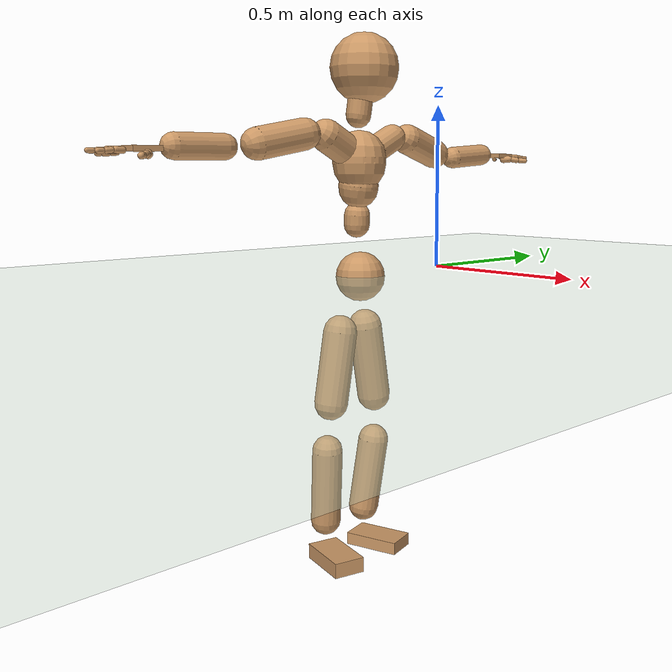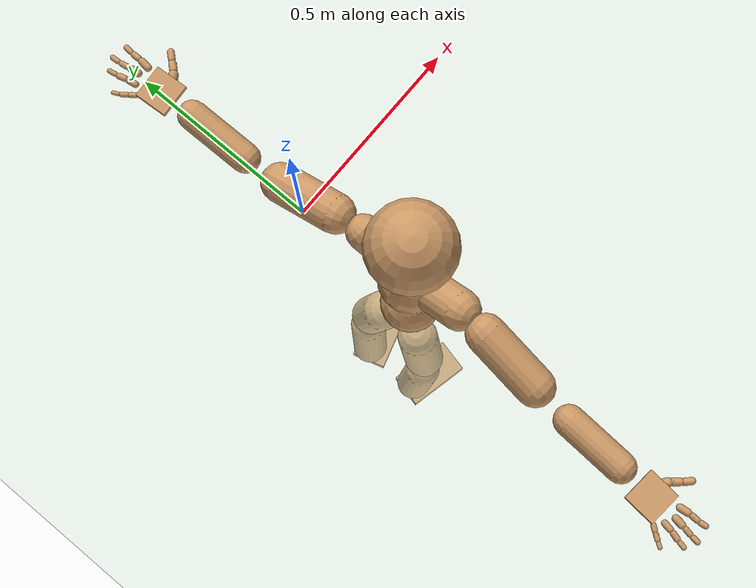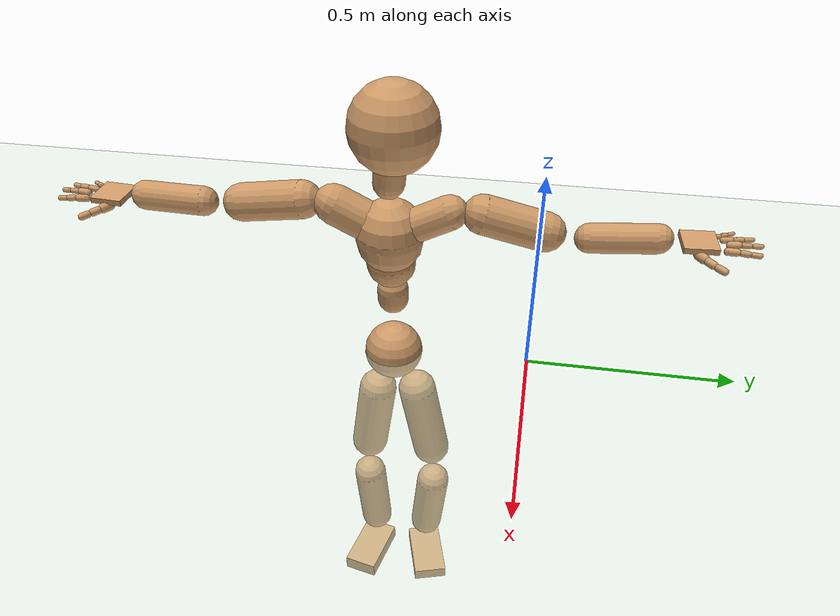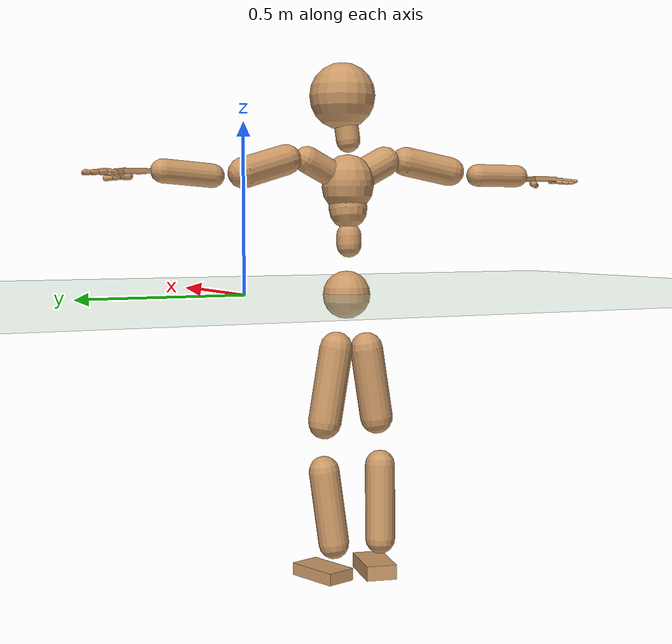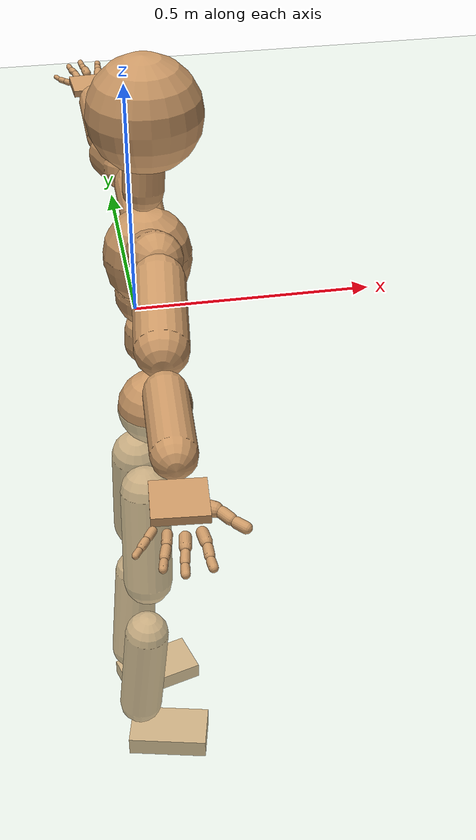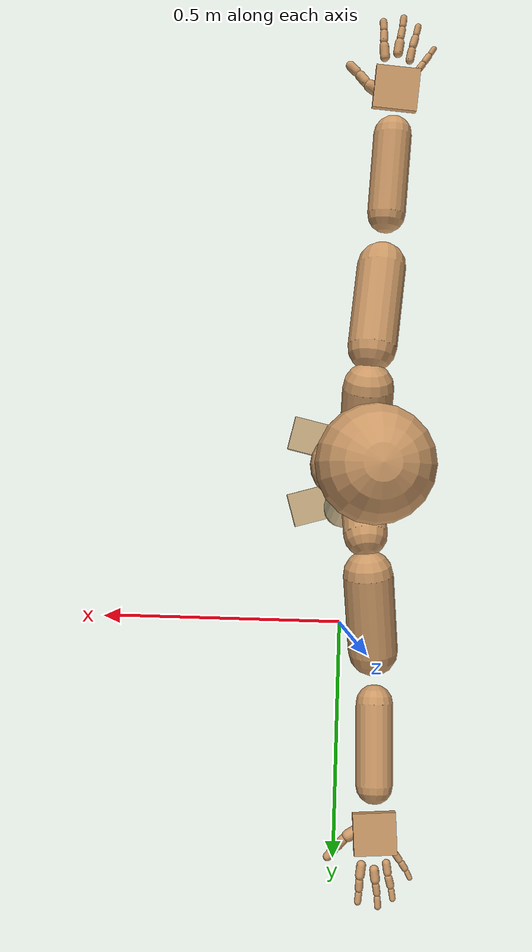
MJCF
<mujoco model="humanoid">
  <compiler coordinate="local" angle="radian"/>
  <default>
    <joint damping="0.0" armature="0.01" stiffness="0.0" limited="true"/>
    <geom conaffinity="1" condim="3" contype="7" margin="0.001" rgba="0.8 0.6 .4 1"/>
  </default>
  <asset>
    <texture type="skybox" builtin="gradient" rgb1=".4 .5 .6" rgb2="0 0 0" width="100" height="100"/>
    <texture builtin="flat" height="1278" mark="cross" markrgb="1 1 1" name="texgeom" random="0.01" rgb1="0.8 0.6 0.4" rgb2="0.8 0.6 0.4" type="cube" width="127"/>
    <texture builtin="checker" height="100" name="texplane" rgb1="0 0 0" rgb2="0.8 0.8 0.8" type="2d" width="100"/>
    <material name="MatPlane" reflectance="0.5" shininess="1" specular="1" texrepeat="60 60" texture="texplane"/>
    <material name="geom" texture="texgeom" texuniform="true"/>
  </asset>
  <worldbody>
    <light cutoff="100" diffuse="1 1 1" dir="-0 0 -1.3" directional="true" exponent="1" pos="0 0 1.3" specular=".1 .1 .1"/>
    <geom conaffinity="1" condim="3" name="floor" pos="0 0 0" rgba="0.8 0.9 0.8 1" size="100 100 .2" type="plane" material="MatPlane"/>
    <body name="Pelvis" pos="-0.0002 -0.3334 -0.0054">
      <freejoint name="Pelvis"/>
      <geom type="sphere" contype="1" conaffinity="1" density="500" size="0.0723" pos="0.0000 0.0000 0.0000" name="Pelvis"/>
      <body name="L_Hip" pos="-0.0358 0.0403 -0.0834">
        <joint name="L_Hip_x" type="hinge" pos="0 0 0" axis="1 0 0" stiffness="800" damping="80" armature="0.02" range="-180.0000 180.0000"/>
        <joint name="L_Hip_y" type="hinge" pos="0 0 0" axis="0 1 0" stiffness="800" damping="80" armature="0.02" range="-180.0000 180.0000"/>
        <joint name="L_Hip_z" type="hinge" pos="0 0 0" axis="0 0 1" stiffness="800" damping="80" armature="0.02" range="-180.0000 180.0000"/>
        <geom type="capsule" contype="1" conaffinity="1" density="500" fromto="-0.0010 0.0133 -0.0737 -0.0042 0.0531 -0.2947" size="0.0496" name="L_Hip"/>
        <body name="L_Knee" pos="-0.0052 0.0664 -0.3684">
          <joint name="L_Knee_x" type="hinge" pos="0 0 0" axis="1 0 0" stiffness="800" damping="80" armature="0.02" range="-180.0000 180.0000"/>
          <joint name="L_Knee_y" type="hinge" pos="0 0 0" axis="0 1 0" stiffness="800" damping="80" armature="0.02" range="-180.0000 180.0000"/>
          <joint name="L_Knee_z" type="hinge" pos="0 0 0" axis="0 0 1" stiffness="800" damping="80" armature="0.02" range="-180.0000 180.0000"/>
          <geom type="capsule" contype="1" conaffinity="1" density="500" fromto="-0.0069 -0.0074 -0.0723 -0.0277 -0.0297 -0.2891" size="0.0459" name="L_Knee"/>
          <body name="L_Ankle" pos="-0.0346 -0.0372 -0.3613">
            <joint name="L_Ankle_x" type="hinge" pos="0 0 0" axis="1 0 0" stiffness="800" damping="80" armature="0.02" range="-180.0000 180.0000"/>
            <joint name="L_Ankle_y" type="hinge" pos="0 0 0" axis="0 1 0" stiffness="800" damping="80" armature="0.02" range="-180.0000 180.0000"/>
            <joint name="L_Ankle_z" type="hinge" pos="0 0 0" axis="0 0 1" stiffness="800" damping="80" armature="0.02" range="-180.0000 180.0000"/>
            <geom type="box" contype="1" conaffinity="1" density="500" pos="0.0619 0.0180 -0.0259" size="0.0844 0.047 0.0183" quat="0.9900 0.0000 0.0000 0.1413" name="L_Ankle"/>
            <body name="L_Toe" pos="0.1238 0.0361 -0.0518">
              <joint name="L_Toe_x" type="hinge" pos="0 0 0" axis="1 0 0" stiffness="500" damping="50" armature="0.02" range="-180.0000 180.0000"/>
              <joint name="L_Toe_y" type="hinge" pos="0 0 0" axis="0 1 0" stiffness="500" damping="50" armature="0.02" range="-180.0000 180.0000"/>
              <joint name="L_Toe_z" type="hinge" pos="0 0 0" axis="0 0 1" stiffness="500" damping="50" armature="0.02" range="-180.0000 180.0000"/>
              <geom type="box" contype="1" conaffinity="1" density="500" pos="0.0000 0.0000 0.0275" size="0.001 0.0023 0.001" quat="0.9892 0.0000 0.0000 0.1464" name="L_Toe"/>
            </body>
          </body>
        </body>
      </body>
      <body name="R_Hip" pos="-0.0294 -0.0413 -0.0924">
        <joint name="R_Hip_x" type="hinge" pos="0 0 0" axis="1 0 0" stiffness="800" damping="80" armature="0.02" range="-180.0000 180.0000"/>
        <joint name="R_Hip_y" type="hinge" pos="0 0 0" axis="0 1 0" stiffness="800" damping="80" armature="0.02" range="-180.0000 180.0000"/>
        <joint name="R_Hip_z" type="hinge" pos="0 0 0" axis="0 0 1" stiffness="800" damping="80" armature="0.02" range="-180.0000 180.0000"/>
        <geom type="capsule" contype="1" conaffinity="1" density="500" fromto="-0.0023 -0.0105 -0.0707 -0.0091 -0.0420 -0.2827" size="0.0494" name="R_Hip"/>
        <body name="R_Knee" pos="-0.0114 -0.0525 -0.3534">
          <joint name="R_Knee_x" type="hinge" pos="0 0 0" axis="1 0 0" stiffness="800" damping="80" armature="0.02" range="-180.0000 180.0000"/>
          <joint name="R_Knee_y" type="hinge" pos="0 0 0" axis="0 1 0" stiffness="800" damping="80" armature="0.02" range="-180.0000 180.0000"/>
          <joint name="R_Knee_z" type="hinge" pos="0 0 0" axis="0 0 1" stiffness="800" damping="80" armature="0.02" range="-180.0000 180.0000"/>
          <geom type="capsule" contype="1" conaffinity="1" density="500" fromto="-0.0069 0.0031 -0.0747 -0.0276 0.0125 -0.2988" size="0.0453" name="R_Knee"/>
          <body name="R_Ankle" pos="-0.0345 0.0157 -0.3734">
            <joint name="R_Ankle_x" type="hinge" pos="0 0 0" axis="1 0 0" stiffness="800" damping="80" armature="0.02" range="-180.0000 180.0000"/>
            <joint name="R_Ankle_y" type="hinge" pos="0 0 0" axis="0 1 0" stiffness="800" damping="80" armature="0.02" range="-180.0000 180.0000"/>
            <joint name="R_Ankle_z" type="hinge" pos="0 0 0" axis="0 0 1" stiffness="800" damping="80" armature="0.02" range="-180.0000 180.0000"/>
            <geom type="box" contype="1" conaffinity="1" density="500" pos="0.0647 -0.0146 -0.0261" size="0.0844 0.0471 0.0223" quat="0.9938 0.0000 0.0000 -0.1110" name="R_Ankle"/>
            <body name="R_Toe" pos="0.1295 -0.0293 -0.0522">
              <joint name="R_Toe_x" type="hinge" pos="0 0 0" axis="1 0 0" stiffness="500" damping="50" armature="0.02" range="-180.0000 180.0000"/>
              <joint name="R_Toe_y" type="hinge" pos="0 0 0" axis="0 1 0" stiffness="500" damping="50" armature="0.02" range="-180.0000 180.0000"/>
              <joint name="R_Toe_z" type="hinge" pos="0 0 0" axis="0 0 1" stiffness="500" damping="50" armature="0.02" range="-180.0000 180.0000"/>
              <geom type="box" contype="1" conaffinity="1" density="500" pos="0.0000 0.0000 0.0237" size="0.0009 0.0023 0.001" quat="0.9948 0.0000 0.0000 -0.1021" name="R_Toe"/>
            </body>
          </body>
        </body>
      </body>
      <body name="Torso" pos="-0.0177 -0.0009 0.0939">
        <joint name="Torso_x" type="hinge" pos="0 0 0" axis="1 0 0" stiffness="1000" damping="100" armature="0.02" range="-180.0000 180.0000"/>
        <joint name="Torso_y" type="hinge" pos="0 0 0" axis="0 1 0" stiffness="1000" damping="100" armature="0.02" range="-180.0000 180.0000"/>
        <joint name="Torso_z" type="hinge" pos="0 0 0" axis="0 0 1" stiffness="1000" damping="100" armature="0.02" range="-180.0000 180.0000"/>
        <geom type="capsule" contype="1" conaffinity="1" density="500" fromto="0.0052 -0.0001 0.0846 0.0035 -0.0001 0.0564" size="0.0375" name="Torso"/>
        <body name="Spine" pos="0.0086 -0.0002 0.1409">
          <joint name="Spine_x" type="hinge" pos="0 0 0" axis="1 0 0" stiffness="1000" damping="100" armature="0.02" range="-180.0000 180.0000"/>
          <joint name="Spine_y" type="hinge" pos="0 0 0" axis="0 1 0" stiffness="1000" damping="100" armature="0.02" range="-180.0000 180.0000"/>
          <joint name="Spine_z" type="hinge" pos="0 0 0" axis="0 0 1" stiffness="1000" damping="100" armature="0.02" range="-180.0000 180.0000"/>
          <geom type="capsule" contype="1" conaffinity="1" density="500" fromto="0.0047 -0.0010 0.0318 0.0031 -0.0007 0.0212" size="0.0578" name="Spine"/>
          <body name="Chest" pos="0.0078 -0.0016 0.0529">
            <joint name="Chest_x" type="hinge" pos="0 0 0" axis="1 0 0" stiffness="1000" damping="100" armature="0.02" range="-180.0000 180.0000"/>
            <joint name="Chest_y" type="hinge" pos="0 0 0" axis="0 1 0" stiffness="1000" damping="100" armature="0.02" range="-180.0000 180.0000"/>
            <joint name="Chest_z" type="hinge" pos="0 0 0" axis="0 0 1" stiffness="1000" damping="100" armature="0.02" range="-180.0000 180.0000"/>
            <geom type="capsule" contype="1" conaffinity="1" density="500" fromto="-0.0005 0.0003 0.0552 -0.0003 0.0002 0.0368" size="0.0781" name="Chest"/>
            <body name="Neck" pos="-0.0055 -0.0037 0.1418">
              <joint name="Neck_x" type="hinge" pos="0 0 0" axis="1 0 0" stiffness="500" damping="50" armature="0.02" range="-180.0000 180.0000"/>
              <joint name="Neck_y" type="hinge" pos="0 0 0" axis="0 1 0" stiffness="500" damping="50" armature="0.02" range="-180.0000 180.0000"/>
              <joint name="Neck_z" type="hinge" pos="0 0 0" axis="0 0 1" stiffness="500" damping="50" armature="0.02" range="-180.0000 180.0000"/>
              <geom type="capsule" contype="1" conaffinity="1" density="500" fromto="0.0024 0.0037 0.0328 0.0095 0.0148 0.1311" size="0.0363" name="Neck"/>
              <body name="Head" pos="0.0119 0.0185 0.1639">
                <joint name="Head_x" type="hinge" pos="0 0 0" axis="1 0 0" stiffness="500" damping="50" armature="0.02" range="-180.0000 180.0000"/>
                <joint name="Head_y" type="hinge" pos="0 0 0" axis="0 1 0" stiffness="500" damping="50" armature="0.02" range="-180.0000 180.0000"/>
                <joint name="Head_z" type="hinge" pos="0 0 0" axis="0 0 1" stiffness="500" damping="50" armature="0.02" range="-180.0000 180.0000"/>
                <geom type="sphere" contype="1" conaffinity="1" density="500" size="0.0992" pos="0.0000 0.0000 0.0000" name="Head"/>
              </body>
            </body>
            <body name="L_Thorax" pos="0.0035 0.0382 0.0674">
              <joint name="L_Thorax_x" type="hinge" pos="0 0 0" axis="1 0 0" stiffness="500" damping="50" armature="0.02" range="-180.0000 180.0000"/>
              <joint name="L_Thorax_y" type="hinge" pos="0 0 0" axis="0 1 0" stiffness="500" damping="50" armature="0.02" range="-180.0000 180.0000"/>
              <joint name="L_Thorax_z" type="hinge" pos="0 0 0" axis="0 0 1" stiffness="500" damping="50" armature="0.02" range="-180.0000 180.0000"/>
              <geom type="capsule" contype="1" conaffinity="1" density="500" fromto="-0.0014 0.0244 0.0117 -0.0056 0.0974 0.0469" size="0.0396" name="L_Thorax"/>
              <body name="L_Shoulder" pos="-0.0071 0.1218 0.0586">
                <joint name="L_Shoulder_x" type="hinge" pos="0 0 0" axis="1 0 0" stiffness="500" damping="50" armature="0.02" range="-180.0000 180.0000"/>
                <joint name="L_Shoulder_y" type="hinge" pos="0 0 0" axis="0 1 0" stiffness="500" damping="50" armature="0.02" range="-180.0000 180.0000"/>
                <joint name="L_Shoulder_z" type="hinge" pos="0 0 0" axis="0 0 1" stiffness="500" damping="50" armature="0.02" range="-180.0000 180.0000"/>
                <geom type="capsule" contype="1" conaffinity="1" density="500" fromto="-0.0058 0.0471 -0.0138 -0.0232 0.1883 -0.0554" size="0.0448" name="L_Shoulder"/>
                <body name="L_Elbow" pos="-0.029 0.2354 -0.0692">
                  <joint name="L_Elbow_x" type="hinge" pos="0 0 0" axis="1 0 0" stiffness="500" damping="50" armature="0.02" range="-720.0000 720.0000"/>
                  <joint name="L_Elbow_y" type="hinge" pos="0 0 0" axis="0 1 0" stiffness="500" damping="50" armature="0.02" range="-720.0000 720.0000"/>
                  <joint name="L_Elbow_z" type="hinge" pos="0 0 0" axis="0 0 1" stiffness="500" damping="50" armature="0.02" range="-720.0000 720.0000"/>
                  <geom type="capsule" contype="1" conaffinity="1" density="500" fromto="-0.0010 0.0492 0.0036 -0.0038 0.1967 0.0142" size="0.0339" name="L_Elbow"/>
                  <body name="L_Wrist" pos="-0.0048 0.2459 0.0178">
                    <joint name="L_Wrist_x" type="hinge" pos="0 0 0" axis="1 0 0" stiffness="300" damping="30" armature="0.02" range="-180.0000 180.0000"/>
                    <joint name="L_Wrist_y" type="hinge" pos="0 0 0" axis="0 1 0" stiffness="300" damping="30" armature="0.02" range="-180.0000 180.0000"/>
                    <joint name="L_Wrist_z" type="hinge" pos="0 0 0" axis="0 0 1" stiffness="300" damping="30" armature="0.02" range="-180.0000 180.0000"/>
                    <geom type="box" contype="1" conaffinity="1" density="500" pos="-0.0027 0.0391 -0.0062" size="0.0387 0.0391 0.0067" quat="0.7309 0.0000 0.0000 -0.6824" name="L_Wrist"/>
                    <body name="L_Index1" pos="0.0187 0.0921 -0.0102">
                      <joint name="L_Index1_x" type="hinge" pos="0 0 0" axis="1 0 0" stiffness="100" damping="10" armature="0.02" range="-180.0000 180.0000"/>
                      <joint name="L_Index1_y" type="hinge" pos="0 0 0" axis="0 1 0" stiffness="100" damping="10" armature="0.02" range="-180.0000 180.0000"/>
                      <joint name="L_Index1_z" type="hinge" pos="0 0 0" axis="0 0 1" stiffness="100" damping="10" armature="0.02" range="-180.0000 180.0000"/>
                      <geom type="capsule" contype="1" conaffinity="1" density="500" fromto="0.0007 0.0063 0.0002 0.0028 0.0253 0.0009" size="0.0086" name="L_Index1"/>
                      <body name="L_Index2" pos="0.0035 0.0316 0.0011">
                        <joint name="L_Index2_x" type="hinge" pos="0 0 0" axis="1 0 0" stiffness="100" damping="10" armature="0.02" range="-180.0000 180.0000"/>
                        <joint name="L_Index2_y" type="hinge" pos="0 0 0" axis="0 1 0" stiffness="100" damping="10" armature="0.02" range="-180.0000 180.0000"/>
                        <joint name="L_Index2_z" type="hinge" pos="0 0 0" axis="0 0 1" stiffness="100" damping="10" armature="0.02" range="-180.0000 180.0000"/>
                        <geom type="capsule" contype="1" conaffinity="1" density="500" fromto="-0.0000 0.0045 -0.0005 -0.0000 0.0181 -0.0021" size="0.0072" name="L_Index2"/>
                        <body name="L_Index3" pos="0 0.0226 -0.0026">
                          <joint name="L_Index3_x" type="hinge" pos="0 0 0" axis="1 0 0" stiffness="100" damping="10" armature="0.02" range="-180.0000 180.0000"/>
                          <joint name="L_Index3_y" type="hinge" pos="0 0 0" axis="0 1 0" stiffness="100" damping="10" armature="0.02" range="-180.0000 180.0000"/>
                          <joint name="L_Index3_z" type="hinge" pos="0 0 0" axis="0 0 1" stiffness="100" damping="10" armature="0.02" range="-180.0000 180.0000"/>
                          <geom type="capsule" contype="1" conaffinity="1" density="500" fromto="0.0004 0.0049 -0.0001 0.0016 0.0197 -0.0005" size="0.0063" name="L_Index3"/>
                        </body>
                      </body>
                    </body>
                    <body name="L_Middle1" pos="-0.0032 0.0995 -0.008">
                      <joint name="L_Middle1_x" type="hinge" pos="0 0 0" axis="1 0 0" stiffness="100" damping="10" armature="0.02" range="-180.0000 180.0000"/>
                      <joint name="L_Middle1_y" type="hinge" pos="0 0 0" axis="0 1 0" stiffness="100" damping="10" armature="0.02" range="-180.0000 180.0000"/>
                      <joint name="L_Middle1_z" type="hinge" pos="0 0 0" axis="0 0 1" stiffness="100" damping="10" armature="0.02" range="-180.0000 180.0000"/>
                      <geom type="capsule" contype="1" conaffinity="1" density="500" fromto="-0.0008 0.0060 -0.0000 -0.0032 0.0241 -0.0001" size="0.0086" name="L_Middle1"/>
                      <body name="L_Middle2" pos="-0.004 0.0302 -0.0001">
                        <joint name="L_Middle2_x" type="hinge" pos="0 0 0" axis="1 0 0" stiffness="100" damping="10" armature="0.02" range="-180.0000 180.0000"/>
                        <joint name="L_Middle2_y" type="hinge" pos="0 0 0" axis="0 1 0" stiffness="100" damping="10" armature="0.02" range="-180.0000 180.0000"/>
                        <joint name="L_Middle2_z" type="hinge" pos="0 0 0" axis="0 0 1" stiffness="100" damping="10" armature="0.02" range="-180.0000 180.0000"/>
                        <geom type="capsule" contype="1" conaffinity="1" density="500" fromto="-0.0008 0.0046 -0.0005 -0.0032 0.0186 -0.0018" size="0.0066" name="L_Middle2"/>
                        <body name="L_Middle3" pos="-0.004 0.0232 -0.0023">
                          <joint name="L_Middle3_x" type="hinge" pos="0 0 0" axis="1 0 0" stiffness="100" damping="10" armature="0.02" range="-180.0000 180.0000"/>
                          <joint name="L_Middle3_y" type="hinge" pos="0 0 0" axis="0 1 0" stiffness="100" damping="10" armature="0.02" range="-180.0000 180.0000"/>
                          <joint name="L_Middle3_z" type="hinge" pos="0 0 0" axis="0 0 1" stiffness="100" damping="10" armature="0.02" range="-180.0000 180.0000"/>
                          <geom type="capsule" contype="1" conaffinity="1" density="500" fromto="-0.0004 0.0050 -0.0001 -0.0016 0.0202 -0.0002" size="0.006" name="L_Middle3"/>
                        </body>
                      </body>
                    </body>
                    <body name="L_Pinky1" pos="-0.0413 0.0758 -0.0146">
                      <joint name="L_Pinky1_x" type="hinge" pos="0 0 0" axis="1 0 0" stiffness="100" damping="10" armature="0.02" range="-180.0000 180.0000"/>
                      <joint name="L_Pinky1_y" type="hinge" pos="0 0 0" axis="0 1 0" stiffness="100" damping="10" armature="0.02" range="-180.0000 180.0000"/>
                      <joint name="L_Pinky1_z" type="hinge" pos="0 0 0" axis="0 0 1" stiffness="100" damping="10" armature="0.02" range="-180.0000 180.0000"/>
                      <geom type="capsule" contype="1" conaffinity="1" density="500" fromto="-0.0022 0.0032 -0.0003 -0.0089 0.0127 -0.0014" size="0.0063" name="L_Pinky1"/>
                      <body name="L_Pinky2" pos="-0.0112 0.0159 -0.0017">
                        <joint name="L_Pinky2_x" type="hinge" pos="0 0 0" axis="1 0 0" stiffness="100" damping="10" armature="0.02" range="-180.0000 180.0000"/>
                        <joint name="L_Pinky2_y" type="hinge" pos="0 0 0" axis="0 1 0" stiffness="100" damping="10" armature="0.02" range="-180.0000 180.0000"/>
                        <joint name="L_Pinky2_z" type="hinge" pos="0 0 0" axis="0 0 1" stiffness="100" damping="10" armature="0.02" range="-180.0000 180.0000"/>
                        <geom type="capsule" contype="1" conaffinity="1" density="500" fromto="-0.0022 0.0031 -0.0003 -0.0087 0.0126 -0.0014" size="0.0061" name="L_Pinky2"/>
                        <body name="L_Pinky3" pos="-0.0109 0.0157 -0.0017">
                          <joint name="L_Pinky3_x" type="hinge" pos="0 0 0" axis="1 0 0" stiffness="100" damping="10" armature="0.02" range="-180.0000 180.0000"/>
                          <joint name="L_Pinky3_y" type="hinge" pos="0 0 0" axis="0 1 0" stiffness="100" damping="10" armature="0.02" range="-180.0000 180.0000"/>
                          <joint name="L_Pinky3_z" type="hinge" pos="0 0 0" axis="0 0 1" stiffness="100" damping="10" armature="0.02" range="-180.0000 180.0000"/>
                          <geom type="capsule" contype="1" conaffinity="1" density="500" fromto="-0.0018 0.0035 0.0001 -0.0071 0.0142 0.0002" size="0.0048" name="L_Pinky3"/>
                        </body>
                      </body>
                    </body>
                    <body name="L_Ring1" pos="-0.0251 0.0882 -0.0101">
                      <joint name="L_Ring1_x" type="hinge" pos="0 0 0" axis="1 0 0" stiffness="100" damping="10" armature="0.02" range="-180.0000 180.0000"/>
                      <joint name="L_Ring1_y" type="hinge" pos="0 0 0" axis="0 1 0" stiffness="100" damping="10" armature="0.02" range="-180.0000 180.0000"/>
                      <joint name="L_Ring1_z" type="hinge" pos="0 0 0" axis="0 0 1" stiffness="100" damping="10" armature="0.02" range="-180.0000 180.0000"/>
                      <geom type="capsule" contype="1" conaffinity="1" density="500" fromto="-0.0009 0.0055 0.0001 -0.0037 0.0222 0.0004" size="0.0074" name="L_Ring1"/>
                      <body name="L_Ring2" pos="-0.0046 0.0277 0.0005">
                        <joint name="L_Ring2_x" type="hinge" pos="0 0 0" axis="1 0 0" stiffness="100" damping="10" armature="0.02" range="-180.0000 180.0000"/>
                        <joint name="L_Ring2_y" type="hinge" pos="0 0 0" axis="0 1 0" stiffness="100" damping="10" armature="0.02" range="-180.0000 180.0000"/>
                        <joint name="L_Ring2_z" type="hinge" pos="0 0 0" axis="0 0 1" stiffness="100" damping="10" armature="0.02" range="-180.0000 180.0000"/>
                        <geom type="capsule" contype="1" conaffinity="1" density="500" fromto="-0.0013 0.0045 -0.0004 -0.0051 0.0182 -0.0015" size="0.0071" name="L_Ring2"/>
                        <body name="L_Ring3" pos="-0.0063 0.0227 -0.0019">
                          <joint name="L_Ring3_x" type="hinge" pos="0 0 0" axis="1 0 0" stiffness="100" damping="10" armature="0.02" range="-180.0000 180.0000"/>
                          <joint name="L_Ring3_y" type="hinge" pos="0 0 0" axis="0 1 0" stiffness="100" damping="10" armature="0.02" range="-180.0000 180.0000"/>
                          <joint name="L_Ring3_z" type="hinge" pos="0 0 0" axis="0 0 1" stiffness="100" damping="10" armature="0.02" range="-180.0000 180.0000"/>
                          <geom type="capsule" contype="1" conaffinity="1" density="500" fromto="-0.0009 0.0049 0.0000 -0.0035 0.0198 0.0001" size="0.0056" name="L_Ring3"/>
                        </body>
                      </body>
                    </body>
                    <body name="L_Thumb1" pos="0.0241 0.0351 -0.0188">
                      <joint name="L_Thumb1_x" type="hinge" pos="0 0 0" axis="1 0 0" stiffness="100" damping="10" armature="0.02" range="-180.0000 180.0000"/>
                      <joint name="L_Thumb1_y" type="hinge" pos="0 0 0" axis="0 1 0" stiffness="100" damping="10" armature="0.02" range="-180.0000 180.0000"/>
                      <joint name="L_Thumb1_z" type="hinge" pos="0 0 0" axis="0 0 1" stiffness="100" damping="10" armature="0.02" range="-180.0000 180.0000"/>
                      <geom type="capsule" contype="1" conaffinity="1" density="500" fromto="0.0051 0.0032 0.0002 0.0203 0.0128 0.0009" size="0.0112" name="L_Thumb1"/>
                      <body name="L_Thumb2" pos="0.0253 0.016 0.0011">
                        <joint name="L_Thumb2_x" type="hinge" pos="0 0 0" axis="1 0 0" stiffness="100" damping="10" armature="0.02" range="-180.0000 180.0000"/>
                        <joint name="L_Thumb2_y" type="hinge" pos="0 0 0" axis="0 1 0" stiffness="100" damping="10" armature="0.02" range="-180.0000 180.0000"/>
                        <joint name="L_Thumb2_z" type="hinge" pos="0 0 0" axis="0 0 1" stiffness="100" damping="10" armature="0.02" range="-180.0000 180.0000"/>
                        <geom type="capsule" contype="1" conaffinity="1" density="500" fromto="0.0032 0.0040 -0.0008 0.0130 0.0159 -0.0032" size="0.009" name="L_Thumb2"/>
                        <body name="L_Thumb3" pos="0.0162 0.0198 -0.004">
                          <joint name="L_Thumb3_x" type="hinge" pos="0 0 0" axis="1 0 0" stiffness="100" damping="10" armature="0.02" range="-180.0000 180.0000"/>
                          <joint name="L_Thumb3_y" type="hinge" pos="0 0 0" axis="0 1 0" stiffness="100" damping="10" armature="0.02" range="-180.0000 180.0000"/>
                          <joint name="L_Thumb3_z" type="hinge" pos="0 0 0" axis="0 0 1" stiffness="100" damping="10" armature="0.02" range="-180.0000 180.0000"/>
                          <geom type="capsule" contype="1" conaffinity="1" density="500" fromto="0.0036 0.0044 -0.0004 0.0146 0.0175 -0.0016" size="0.0082" name="L_Thumb3"/>
                        </body>
                      </body>
                    </body>
                  </body>
                </body>
              </body>
            </body>
            <body name="R_Thorax" pos="-0.0007 -0.0332 0.0669">
              <joint name="R_Thorax_x" type="hinge" pos="0 0 0" axis="1 0 0" stiffness="500" damping="50" armature="0.02" range="-180.0000 180.0000"/>
              <joint name="R_Thorax_y" type="hinge" pos="0 0 0" axis="0 1 0" stiffness="500" damping="50" armature="0.02" range="-180.0000 180.0000"/>
              <joint name="R_Thorax_z" type="hinge" pos="0 0 0" axis="0 0 1" stiffness="500" damping="50" armature="0.02" range="-180.0000 180.0000"/>
              <geom type="capsule" contype="1" conaffinity="1" density="500" fromto="0.0003 -0.0230 0.0118 0.0013 -0.0919 0.0473" size="0.0459" name="R_Thorax"/>
              <body name="R_Shoulder" pos="0.0016 -0.1148 0.0591">
                <joint name="R_Shoulder_x" type="hinge" pos="0 0 0" axis="1 0 0" stiffness="500" damping="50" armature="0.02" range="-180.0000 180.0000"/>
                <joint name="R_Shoulder_y" type="hinge" pos="0 0 0" axis="0 1 0" stiffness="500" damping="50" armature="0.02" range="-180.0000 180.0000"/>
                <joint name="R_Shoulder_z" type="hinge" pos="0 0 0" axis="0 0 1" stiffness="500" damping="50" armature="0.02" range="-180.0000 180.0000"/>
                <geom type="capsule" contype="1" conaffinity="1" density="500" fromto="-0.0051 -0.0499 -0.0096 -0.0206 -0.1994 -0.0383" size="0.044" name="R_Shoulder"/>
                <body name="R_Elbow" pos="-0.0257 -0.2493 -0.0478">
                  <joint name="R_Elbow_x" type="hinge" pos="0 0 0" axis="1 0 0" stiffness="500" damping="50" armature="0.02" range="-720.0000 720.0000"/>
                  <joint name="R_Elbow_y" type="hinge" pos="0 0 0" axis="0 1 0" stiffness="500" damping="50" armature="0.02" range="-720.0000 720.0000"/>
                  <joint name="R_Elbow_z" type="hinge" pos="0 0 0" axis="0 0 1" stiffness="500" damping="50" armature="0.02" range="-720.0000 720.0000"/>
                  <geom type="capsule" contype="1" conaffinity="1" density="500" fromto="-0.0023 -0.0476 -0.0002 -0.0093 -0.1906 -0.0007" size="0.0346" name="R_Elbow"/>
                  <body name="R_Wrist" pos="-0.0116 -0.2382 -0.0008">
                    <joint name="R_Wrist_x" type="hinge" pos="0 0 0" axis="1 0 0" stiffness="300" damping="30" armature="0.02" range="-180.0000 180.0000"/>
                    <joint name="R_Wrist_y" type="hinge" pos="0 0 0" axis="0 1 0" stiffness="300" damping="30" armature="0.02" range="-180.0000 180.0000"/>
                    <joint name="R_Wrist_z" type="hinge" pos="0 0 0" axis="0 0 1" stiffness="300" damping="30" armature="0.02" range="-180.0000 180.0000"/>
                    <geom type="box" contype="1" conaffinity="1" density="500" pos="-0.0031 -0.0391 -0.0076" size="0.0387 0.0402 0.0068" quat="0.7349 0.0000 0.0000 0.6782" name="R_Wrist"/>
                    <body name="R_Index1" pos="0.0178 -0.0921 -0.013">
                      <joint name="R_Index1_x" type="hinge" pos="0 0 0" axis="1 0 0" stiffness="100" damping="10" armature="0.02" range="-180.0000 180.0000"/>
                      <joint name="R_Index1_y" type="hinge" pos="0 0 0" axis="0 1 0" stiffness="100" damping="10" armature="0.02" range="-180.0000 180.0000"/>
                      <joint name="R_Index1_z" type="hinge" pos="0 0 0" axis="0 0 1" stiffness="100" damping="10" armature="0.02" range="-180.0000 180.0000"/>
                      <geom type="capsule" contype="1" conaffinity="1" density="500" fromto="0.0007 -0.0063 0.0002 0.0028 -0.0253 0.0009" size="0.0086" name="R_Index1"/>
                      <body name="R_Index2" pos="0.0035 -0.0316 0.0011">
                        <joint name="R_Index2_x" type="hinge" pos="0 0 0" axis="1 0 0" stiffness="100" damping="10" armature="0.02" range="-180.0000 180.0000"/>
                        <joint name="R_Index2_y" type="hinge" pos="0 0 0" axis="0 1 0" stiffness="100" damping="10" armature="0.02" range="-180.0000 180.0000"/>
                        <joint name="R_Index2_z" type="hinge" pos="0 0 0" axis="0 0 1" stiffness="100" damping="10" armature="0.02" range="-180.0000 180.0000"/>
                        <geom type="capsule" contype="1" conaffinity="1" density="500" fromto="-0.0000 -0.0045 -0.0005 -0.0000 -0.0181 -0.0021" size="0.0072" name="R_Index2"/>
                        <body name="R_Index3" pos="0 -0.0226 -0.0026">
                          <joint name="R_Index3_x" type="hinge" pos="0 0 0" axis="1 0 0" stiffness="100" damping="10" armature="0.02" range="-180.0000 180.0000"/>
                          <joint name="R_Index3_y" type="hinge" pos="0 0 0" axis="0 1 0" stiffness="100" damping="10" armature="0.02" range="-180.0000 180.0000"/>
                          <joint name="R_Index3_z" type="hinge" pos="0 0 0" axis="0 0 1" stiffness="100" damping="10" armature="0.02" range="-180.0000 180.0000"/>
                          <geom type="capsule" contype="1" conaffinity="1" density="500" fromto="0.0004 -0.0041 -0.0001 0.0016 -0.0165 -0.0005" size="0.0066" name="R_Index3"/>
                        </body>
                      </body>
                    </body>
                    <body name="R_Middle1" pos="-0.0041 -0.0995 -0.0109">
                      <joint name="R_Middle1_x" type="hinge" pos="0 0 0" axis="1 0 0" stiffness="100" damping="10" armature="0.02" range="-180.0000 180.0000"/>
                      <joint name="R_Middle1_y" type="hinge" pos="0 0 0" axis="0 1 0" stiffness="100" damping="10" armature="0.02" range="-180.0000 180.0000"/>
                      <joint name="R_Middle1_z" type="hinge" pos="0 0 0" axis="0 0 1" stiffness="100" damping="10" armature="0.02" range="-180.0000 180.0000"/>
                      <geom type="capsule" contype="1" conaffinity="1" density="500" fromto="-0.0008 -0.0060 -0.0000 -0.0032 -0.0241 -0.0001" size="0.0086" name="R_Middle1"/>
                      <body name="R_Middle2" pos="-0.004 -0.0302 -0.0001">
                        <joint name="R_Middle2_x" type="hinge" pos="0 0 0" axis="1 0 0" stiffness="100" damping="10" armature="0.02" range="-180.0000 180.0000"/>
                        <joint name="R_Middle2_y" type="hinge" pos="0 0 0" axis="0 1 0" stiffness="100" damping="10" armature="0.02" range="-180.0000 180.0000"/>
                        <joint name="R_Middle2_z" type="hinge" pos="0 0 0" axis="0 0 1" stiffness="100" damping="10" armature="0.02" range="-180.0000 180.0000"/>
                        <geom type="capsule" contype="1" conaffinity="1" density="500" fromto="-0.0008 -0.0046 -0.0005 -0.0032 -0.0186 -0.0018" size="0.0066" name="R_Middle2"/>
                        <body name="R_Middle3" pos="-0.004 -0.0232 -0.0023">
                          <joint name="R_Middle3_x" type="hinge" pos="0 0 0" axis="1 0 0" stiffness="100" damping="10" armature="0.02" range="-180.0000 180.0000"/>
                          <joint name="R_Middle3_y" type="hinge" pos="0 0 0" axis="0 1 0" stiffness="100" damping="10" armature="0.02" range="-180.0000 180.0000"/>
                          <joint name="R_Middle3_z" type="hinge" pos="0 0 0" axis="0 0 1" stiffness="100" damping="10" armature="0.02" range="-180.0000 180.0000"/>
                          <geom type="capsule" contype="1" conaffinity="1" density="500" fromto="-0.0004 -0.0042 -0.0001 -0.0016 -0.0170 -0.0002" size="0.0063" name="R_Middle3"/>
                        </body>
                      </body>
                    </body>
                    <body name="R_Pinky1" pos="-0.0422 -0.0757 -0.0175">
                      <joint name="R_Pinky1_x" type="hinge" pos="0 0 0" axis="1 0 0" stiffness="100" damping="10" armature="0.02" range="-180.0000 180.0000"/>
                      <joint name="R_Pinky1_y" type="hinge" pos="0 0 0" axis="0 1 0" stiffness="100" damping="10" armature="0.02" range="-180.0000 180.0000"/>
                      <joint name="R_Pinky1_z" type="hinge" pos="0 0 0" axis="0 0 1" stiffness="100" damping="10" armature="0.02" range="-180.0000 180.0000"/>
                      <geom type="capsule" contype="1" conaffinity="1" density="500" fromto="-0.0022 -0.0032 -0.0003 -0.0089 -0.0127 -0.0014" size="0.0063" name="R_Pinky1"/>
                      <body name="R_Pinky2" pos="-0.0112 -0.0159 -0.0017">
                        <joint name="R_Pinky2_x" type="hinge" pos="0 0 0" axis="1 0 0" stiffness="100" damping="10" armature="0.02" range="-180.0000 180.0000"/>
                        <joint name="R_Pinky2_y" type="hinge" pos="0 0 0" axis="0 1 0" stiffness="100" damping="10" armature="0.02" range="-180.0000 180.0000"/>
                        <joint name="R_Pinky2_z" type="hinge" pos="0 0 0" axis="0 0 1" stiffness="100" damping="10" armature="0.02" range="-180.0000 180.0000"/>
                        <geom type="capsule" contype="1" conaffinity="1" density="500" fromto="-0.0022 -0.0031 -0.0003 -0.0087 -0.0126 -0.0014" size="0.0061" name="R_Pinky2"/>
                        <body name="R_Pinky3" pos="-0.0109 -0.0157 -0.0017">
                          <joint name="R_Pinky3_x" type="hinge" pos="0 0 0" axis="1 0 0" stiffness="100" damping="10" armature="0.02" range="-180.0000 180.0000"/>
                          <joint name="R_Pinky3_y" type="hinge" pos="0 0 0" axis="0 1 0" stiffness="100" damping="10" armature="0.02" range="-180.0000 180.0000"/>
                          <joint name="R_Pinky3_z" type="hinge" pos="0 0 0" axis="0 0 1" stiffness="100" damping="10" armature="0.02" range="-180.0000 180.0000"/>
                          <geom type="capsule" contype="1" conaffinity="1" density="500" fromto="-0.0018 -0.0027 0.0001 -0.0071 -0.0110 0.0002" size="0.005" name="R_Pinky3"/>
                        </body>
                      </body>
                    </body>
                    <body name="R_Ring1" pos="-0.026 -0.0881 -0.0129">
                      <joint name="R_Ring1_x" type="hinge" pos="0 0 0" axis="1 0 0" stiffness="100" damping="10" armature="0.02" range="-180.0000 180.0000"/>
                      <joint name="R_Ring1_y" type="hinge" pos="0 0 0" axis="0 1 0" stiffness="100" damping="10" armature="0.02" range="-180.0000 180.0000"/>
                      <joint name="R_Ring1_z" type="hinge" pos="0 0 0" axis="0 0 1" stiffness="100" damping="10" armature="0.02" range="-180.0000 180.0000"/>
                      <geom type="capsule" contype="1" conaffinity="1" density="500" fromto="-0.0009 -0.0055 0.0001 -0.0037 -0.0222 0.0004" size="0.0074" name="R_Ring1"/>
                      <body name="R_Ring2" pos="-0.0046 -0.0277 0.0005">
                        <joint name="R_Ring2_x" type="hinge" pos="0 0 0" axis="1 0 0" stiffness="100" damping="10" armature="0.02" range="-180.0000 180.0000"/>
                        <joint name="R_Ring2_y" type="hinge" pos="0 0 0" axis="0 1 0" stiffness="100" damping="10" armature="0.02" range="-180.0000 180.0000"/>
                        <joint name="R_Ring2_z" type="hinge" pos="0 0 0" axis="0 0 1" stiffness="100" damping="10" armature="0.02" range="-180.0000 180.0000"/>
                        <geom type="capsule" contype="1" conaffinity="1" density="500" fromto="-0.0013 -0.0045 -0.0004 -0.0051 -0.0182 -0.0015" size="0.0071" name="R_Ring2"/>
                        <body name="R_Ring3" pos="-0.0063 -0.0227 -0.0019">
                          <joint name="R_Ring3_x" type="hinge" pos="0 0 0" axis="1 0 0" stiffness="100" damping="10" armature="0.02" range="-180.0000 180.0000"/>
                          <joint name="R_Ring3_y" type="hinge" pos="0 0 0" axis="0 1 0" stiffness="100" damping="10" armature="0.02" range="-180.0000 180.0000"/>
                          <joint name="R_Ring3_z" type="hinge" pos="0 0 0" axis="0 0 1" stiffness="100" damping="10" armature="0.02" range="-180.0000 180.0000"/>
                          <geom type="capsule" contype="1" conaffinity="1" density="500" fromto="-0.0009 -0.0041 0.0000 -0.0035 -0.0166 0.0001" size="0.0059" name="R_Ring3"/>
                        </body>
                      </body>
                    </body>
                    <body name="R_Thumb1" pos="0.0232 -0.0351 -0.0217">
                      <joint name="R_Thumb1_x" type="hinge" pos="0 0 0" axis="1 0 0" stiffness="100" damping="10" armature="0.02" range="-180.0000 180.0000"/>
                      <joint name="R_Thumb1_y" type="hinge" pos="0 0 0" axis="0 1 0" stiffness="100" damping="10" armature="0.02" range="-180.0000 180.0000"/>
                      <joint name="R_Thumb1_z" type="hinge" pos="0 0 0" axis="0 0 1" stiffness="100" damping="10" armature="0.02" range="-180.0000 180.0000"/>
                      <geom type="capsule" contype="1" conaffinity="1" density="500" fromto="0.0051 -0.0032 0.0002 0.0203 -0.0128 0.0009" size="0.0112" name="R_Thumb1"/>
                      <body name="R_Thumb2" pos="0.0253 -0.016 0.0011">
                        <joint name="R_Thumb2_x" type="hinge" pos="0 0 0" axis="1 0 0" stiffness="100" damping="10" armature="0.02" range="-180.0000 180.0000"/>
                        <joint name="R_Thumb2_y" type="hinge" pos="0 0 0" axis="0 1 0" stiffness="100" damping="10" armature="0.02" range="-180.0000 180.0000"/>
                        <joint name="R_Thumb2_z" type="hinge" pos="0 0 0" axis="0 0 1" stiffness="100" damping="10" armature="0.02" range="-180.0000 180.0000"/>
                        <geom type="capsule" contype="1" conaffinity="1" density="500" fromto="0.0032 -0.0040 -0.0008 0.0130 -0.0159 -0.0032" size="0.009" name="R_Thumb2"/>
                        <body name="R_Thumb3" pos="0.0162 -0.0198 -0.004">
                          <joint name="R_Thumb3_x" type="hinge" pos="0 0 0" axis="1 0 0" stiffness="100" damping="10" armature="0.02" range="-180.0000 180.0000"/>
                          <joint name="R_Thumb3_y" type="hinge" pos="0 0 0" axis="0 1 0" stiffness="100" damping="10" armature="0.02" range="-180.0000 180.0000"/>
                          <joint name="R_Thumb3_z" type="hinge" pos="0 0 0" axis="0 0 1" stiffness="100" damping="10" armature="0.02" range="-180.0000 180.0000"/>
                          <geom type="capsule" contype="1" conaffinity="1" density="500" fromto="0.0036 -0.0036 -0.0004 0.0146 -0.0143 -0.0016" size="0.0085" name="R_Thumb3"/>
                        </body>
                      </body>
                    </body>
                  </body>
                </body>
              </body>
            </body>
          </body>
        </body>
      </body>
    </body>
  </worldbody>
  <actuator>
    <motor name="L_Hip_x" joint="L_Hip_x" gear="500"/>
    <motor name="L_Hip_y" joint="L_Hip_y" gear="500"/>
    <motor name="L_Hip_z" joint="L_Hip_z" gear="500"/>
    <motor name="L_Knee_x" joint="L_Knee_x" gear="500"/>
    <motor name="L_Knee_y" joint="L_Knee_y" gear="500"/>
    <motor name="L_Knee_z" joint="L_Knee_z" gear="500"/>
    <motor name="L_Ankle_x" joint="L_Ankle_x" gear="500"/>
    <motor name="L_Ankle_y" joint="L_Ankle_y" gear="500"/>
    <motor name="L_Ankle_z" joint="L_Ankle_z" gear="500"/>
    <motor name="L_Toe_x" joint="L_Toe_x" gear="500"/>
    <motor name="L_Toe_y" joint="L_Toe_y" gear="500"/>
    <motor name="L_Toe_z" joint="L_Toe_z" gear="500"/>
    <motor name="R_Hip_x" joint="R_Hip_x" gear="500"/>
    <motor name="R_Hip_y" joint="R_Hip_y" gear="500"/>
    <motor name="R_Hip_z" joint="R_Hip_z" gear="500"/>
    <motor name="R_Knee_x" joint="R_Knee_x" gear="500"/>
    <motor name="R_Knee_y" joint="R_Knee_y" gear="500"/>
    <motor name="R_Knee_z" joint="R_Knee_z" gear="500"/>
    <motor name="R_Ankle_x" joint="R_Ankle_x" gear="500"/>
    <motor name="R_Ankle_y" joint="R_Ankle_y" gear="500"/>
    <motor name="R_Ankle_z" joint="R_Ankle_z" gear="500"/>
    <motor name="R_Toe_x" joint="R_Toe_x" gear="500"/>
    <motor name="R_Toe_y" joint="R_Toe_y" gear="500"/>
    <motor name="R_Toe_z" joint="R_Toe_z" gear="500"/>
    <motor name="Torso_x" joint="Torso_x" gear="500"/>
    <motor name="Torso_y" joint="Torso_y" gear="500"/>
    <motor name="Torso_z" joint="Torso_z" gear="500"/>
    <motor name="Spine_x" joint="Spine_x" gear="500"/>
    <motor name="Spine_y" joint="Spine_y" gear="500"/>
    <motor name="Spine_z" joint="Spine_z" gear="500"/>
    <motor name="Chest_x" joint="Chest_x" gear="500"/>
    <motor name="Chest_y" joint="Chest_y" gear="500"/>
    <motor name="Chest_z" joint="Chest_z" gear="500"/>
    <motor name="Neck_x" joint="Neck_x" gear="500"/>
    <motor name="Neck_y" joint="Neck_y" gear="500"/>
    <motor name="Neck_z" joint="Neck_z" gear="500"/>
    <motor name="Head_x" joint="Head_x" gear="500"/>
    <motor name="Head_y" joint="Head_y" gear="500"/>
    <motor name="Head_z" joint="Head_z" gear="500"/>
    <motor name="L_Thorax_x" joint="L_Thorax_x" gear="500"/>
    <motor name="L_Thorax_y" joint="L_Thorax_y" gear="500"/>
    <motor name="L_Thorax_z" joint="L_Thorax_z" gear="500"/>
    <motor name="L_Shoulder_x" joint="L_Shoulder_x" gear="500"/>
    <motor name="L_Shoulder_y" joint="L_Shoulder_y" gear="500"/>
    <motor name="L_Shoulder_z" joint="L_Shoulder_z" gear="500"/>
    <motor name="L_Elbow_x" joint="L_Elbow_x" gear="500"/>
    <motor name="L_Elbow_y" joint="L_Elbow_y" gear="500"/>
    <motor name="L_Elbow_z" joint="L_Elbow_z" gear="500"/>
    <motor name="L_Wrist_x" joint="L_Wrist_x" gear="500"/>
    <motor name="L_Wrist_y" joint="L_Wrist_y" gear="500"/>
    <motor name="L_Wrist_z" joint="L_Wrist_z" gear="500"/>
    <motor name="L_Index1_x" joint="L_Index1_x" gear="500"/>
    <motor name="L_Index1_y" joint="L_Index1_y" gear="500"/>
    <motor name="L_Index1_z" joint="L_Index1_z" gear="500"/>
    <motor name="L_Index2_x" joint="L_Index2_x" gear="500"/>
    <motor name="L_Index2_y" joint="L_Index2_y" gear="500"/>
    <motor name="L_Index2_z" joint="L_Index2_z" gear="500"/>
    <motor name="L_Index3_x" joint="L_Index3_x" gear="500"/>
    <motor name="L_Index3_y" joint="L_Index3_y" gear="500"/>
    <motor name="L_Index3_z" joint="L_Index3_z" gear="500"/>
    <motor name="L_Middle1_x" joint="L_Middle1_x" gear="500"/>
    <motor name="L_Middle1_y" joint="L_Middle1_y" gear="500"/>
    <motor name="L_Middle1_z" joint="L_Middle1_z" gear="500"/>
    <motor name="L_Middle2_x" joint="L_Middle2_x" gear="500"/>
    <motor name="L_Middle2_y" joint="L_Middle2_y" gear="500"/>
    <motor name="L_Middle2_z" joint="L_Middle2_z" gear="500"/>
    <motor name="L_Middle3_x" joint="L_Middle3_x" gear="500"/>
    <motor name="L_Middle3_y" joint="L_Middle3_y" gear="500"/>
    <motor name="L_Middle3_z" joint="L_Middle3_z" gear="500"/>
    <motor name="L_Pinky1_x" joint="L_Pinky1_x" gear="500"/>
    <motor name="L_Pinky1_y" joint="L_Pinky1_y" gear="500"/>
    <motor name="L_Pinky1_z" joint="L_Pinky1_z" gear="500"/>
    <motor name="L_Pinky2_x" joint="L_Pinky2_x" gear="500"/>
    <motor name="L_Pinky2_y" joint="L_Pinky2_y" gear="500"/>
    <motor name="L_Pinky2_z" joint="L_Pinky2_z" gear="500"/>
    <motor name="L_Pinky3_x" joint="L_Pinky3_x" gear="500"/>
    <motor name="L_Pinky3_y" joint="L_Pinky3_y" gear="500"/>
    <motor name="L_Pinky3_z" joint="L_Pinky3_z" gear="500"/>
    <motor name="L_Ring1_x" joint="L_Ring1_x" gear="500"/>
    <motor name="L_Ring1_y" joint="L_Ring1_y" gear="500"/>
    <motor name="L_Ring1_z" joint="L_Ring1_z" gear="500"/>
    <motor name="L_Ring2_x" joint="L_Ring2_x" gear="500"/>
    <motor name="L_Ring2_y" joint="L_Ring2_y" gear="500"/>
    <motor name="L_Ring2_z" joint="L_Ring2_z" gear="500"/>
    <motor name="L_Ring3_x" joint="L_Ring3_x" gear="500"/>
    <motor name="L_Ring3_y" joint="L_Ring3_y" gear="500"/>
    <motor name="L_Ring3_z" joint="L_Ring3_z" gear="500"/>
    <motor name="L_Thumb1_x" joint="L_Thumb1_x" gear="500"/>
    <motor name="L_Thumb1_y" joint="L_Thumb1_y" gear="500"/>
    <motor name="L_Thumb1_z" joint="L_Thumb1_z" gear="500"/>
    <motor name="L_Thumb2_x" joint="L_Thumb2_x" gear="500"/>
    <motor name="L_Thumb2_y" joint="L_Thumb2_y" gear="500"/>
    <motor name="L_Thumb2_z" joint="L_Thumb2_z" gear="500"/>
    <motor name="L_Thumb3_x" joint="L_Thumb3_x" gear="500"/>
    <motor name="L_Thumb3_y" joint="L_Thumb3_y" gear="500"/>
    <motor name="L_Thumb3_z" joint="L_Thumb3_z" gear="500"/>
    <motor name="R_Thorax_x" joint="R_Thorax_x" gear="500"/>
    <motor name="R_Thorax_y" joint="R_Thorax_y" gear="500"/>
    <motor name="R_Thorax_z" joint="R_Thorax_z" gear="500"/>
    <motor name="R_Shoulder_x" joint="R_Shoulder_x" gear="500"/>
    <motor name="R_Shoulder_y" joint="R_Shoulder_y" gear="500"/>
    <motor name="R_Shoulder_z" joint="R_Shoulder_z" gear="500"/>
    <motor name="R_Elbow_x" joint="R_Elbow_x" gear="500"/>
    <motor name="R_Elbow_y" joint="R_Elbow_y" gear="500"/>
    <motor name="R_Elbow_z" joint="R_Elbow_z" gear="500"/>
    <motor name="R_Wrist_x" joint="R_Wrist_x" gear="500"/>
    <motor name="R_Wrist_y" joint="R_Wrist_y" gear="500"/>
    <motor name="R_Wrist_z" joint="R_Wrist_z" gear="500"/>
    <motor name="R_Index1_x" joint="R_Index1_x" gear="500"/>
    <motor name="R_Index1_y" joint="R_Index1_y" gear="500"/>
    <motor name="R_Index1_z" joint="R_Index1_z" gear="500"/>
    <motor name="R_Index2_x" joint="R_Index2_x" gear="500"/>
    <motor name="R_Index2_y" joint="R_Index2_y" gear="500"/>
    <motor name="R_Index2_z" joint="R_Index2_z" gear="500"/>
    <motor name="R_Index3_x" joint="R_Index3_x" gear="500"/>
    <motor name="R_Index3_y" joint="R_Index3_y" gear="500"/>
    <motor name="R_Index3_z" joint="R_Index3_z" gear="500"/>
    <motor name="R_Middle1_x" joint="R_Middle1_x" gear="500"/>
    <motor name="R_Middle1_y" joint="R_Middle1_y" gear="500"/>
    <motor name="R_Middle1_z" joint="R_Middle1_z" gear="500"/>
    <motor name="R_Middle2_x" joint="R_Middle2_x" gear="500"/>
    <motor name="R_Middle2_y" joint="R_Middle2_y" gear="500"/>
    <motor name="R_Middle2_z" joint="R_Middle2_z" gear="500"/>
    <motor name="R_Middle3_x" joint="R_Middle3_x" gear="500"/>
    <motor name="R_Middle3_y" joint="R_Middle3_y" gear="500"/>
    <motor name="R_Middle3_z" joint="R_Middle3_z" gear="500"/>
    <motor name="R_Pinky1_x" joint="R_Pinky1_x" gear="500"/>
    <motor name="R_Pinky1_y" joint="R_Pinky1_y" gear="500"/>
    <motor name="R_Pinky1_z" joint="R_Pinky1_z" gear="500"/>
    <motor name="R_Pinky2_x" joint="R_Pinky2_x" gear="500"/>
    <motor name="R_Pinky2_y" joint="R_Pinky2_y" gear="500"/>
    <motor name="R_Pinky2_z" joint="R_Pinky2_z" gear="500"/>
    <motor name="R_Pinky3_x" joint="R_Pinky3_x" gear="500"/>
    <motor name="R_Pinky3_y" joint="R_Pinky3_y" gear="500"/>
    <motor name="R_Pinky3_z" joint="R_Pinky3_z" gear="500"/>
    <motor name="R_Ring1_x" joint="R_Ring1_x" gear="500"/>
    <motor name="R_Ring1_y" joint="R_Ring1_y" gear="500"/>
    <motor name="R_Ring1_z" joint="R_Ring1_z" gear="500"/>
    <motor name="R_Ring2_x" joint="R_Ring2_x" gear="500"/>
    <motor name="R_Ring2_y" joint="R_Ring2_y" gear="500"/>
    <motor name="R_Ring2_z" joint="R_Ring2_z" gear="500"/>
    <motor name="R_Ring3_x" joint="R_Ring3_x" gear="500"/>
    <motor name="R_Ring3_y" joint="R_Ring3_y" gear="500"/>
    <motor name="R_Ring3_z" joint="R_Ring3_z" gear="500"/>
    <motor name="R_Thumb1_x" joint="R_Thumb1_x" gear="500"/>
    <motor name="R_Thumb1_y" joint="R_Thumb1_y" gear="500"/>
    <motor name="R_Thumb1_z" joint="R_Thumb1_z" gear="500"/>
    <motor name="R_Thumb2_x" joint="R_Thumb2_x" gear="500"/>
    <motor name="R_Thumb2_y" joint="R_Thumb2_y" gear="500"/>
    <motor name="R_Thumb2_z" joint="R_Thumb2_z" gear="500"/>
    <motor name="R_Thumb3_x" joint="R_Thumb3_x" gear="500"/>
    <motor name="R_Thumb3_y" joint="R_Thumb3_y" gear="500"/>
    <motor name="R_Thumb3_z" joint="R_Thumb3_z" gear="500"/>
  </actuator>
  <contact>
    <exclude body1="Torso" body2="Chest"/>
    <exclude body1="Head" body2="Chest"/>
    <exclude body1="R_Knee" body2="R_Toe"/>
    <exclude body1="R_Knee" body2="L_Ankle"/>
    <exclude body1="R_Knee" body2="L_Toe"/>
    <exclude body1="L_Knee" body2="L_Toe"/>
    <exclude body1="L_Knee" body2="R_Ankle"/>
    <exclude body1="L_Knee" body2="R_Toe"/>
    <exclude body1="L_Shoulder" body2="Chest"/>
    <exclude body1="R_Shoulder" body2="Chest"/>
  </contact>
  <sensor/>
  <size njmax="700" nconmax="700"/>
</mujoco>
